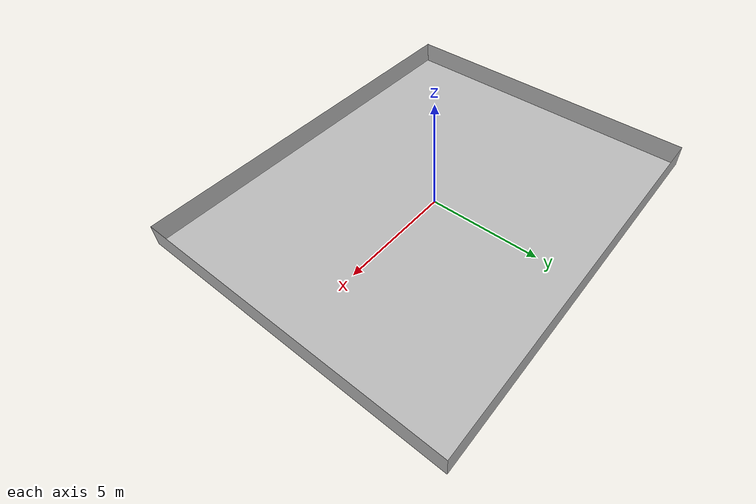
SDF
<?xml version='1.0' encoding='utf-8'?>
<sdf version="1.7">
<model name="template_model">
<link name="track">
<collision name="collision">
<pose>0 0 0 0 0 0</pose>
<geometry>
<mesh>
<uri>model://meshes/red_star_pro_ccw/red_star_pro_ccw_collision.dae</uri>
</mesh>
</geometry>
</collision>
<visual name="visual">
<pose>0 0 0 0 0 0</pose>
<geometry>
<mesh>
<uri>model://meshes/red_star_pro_ccw/red_star_pro_ccw.dae</uri>
</mesh>
</geometry>
</visual>
</link>
<static>1</static>
</model>
</sdf>
